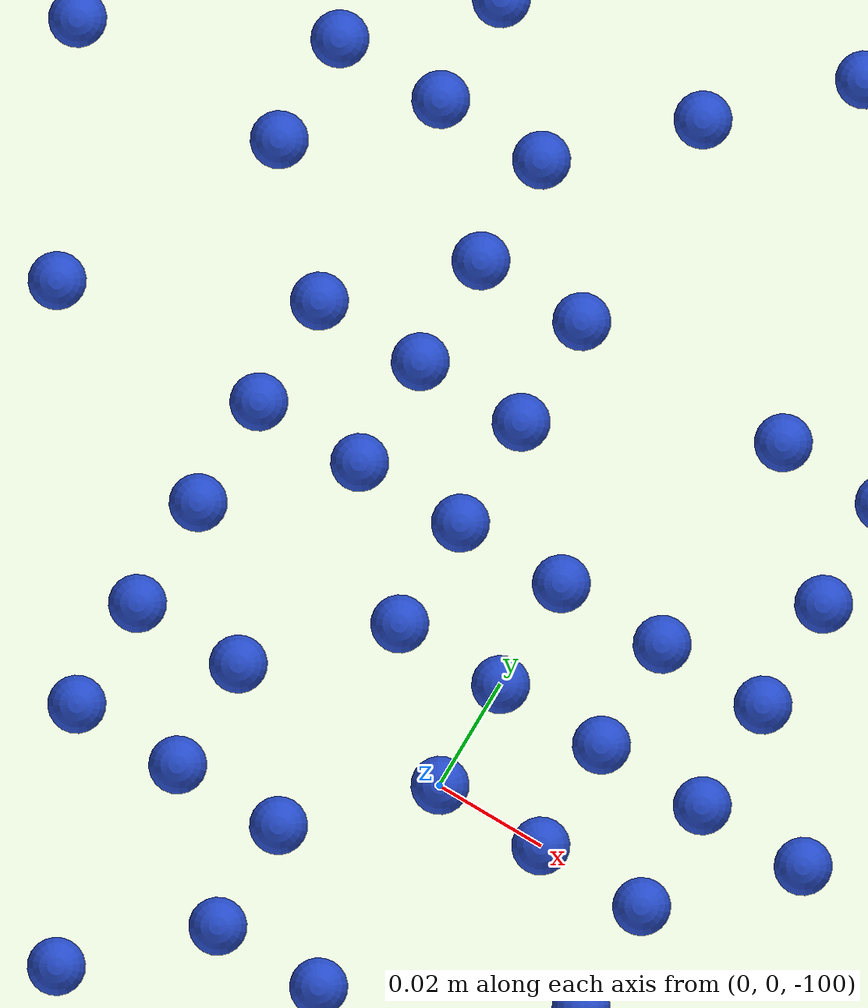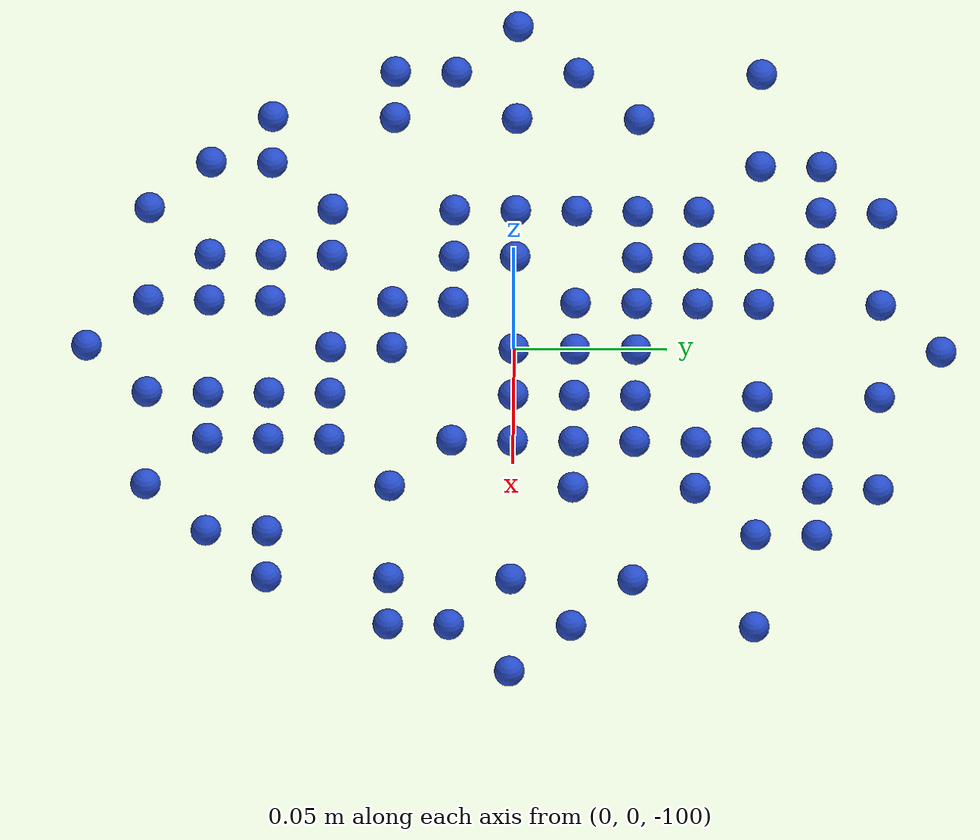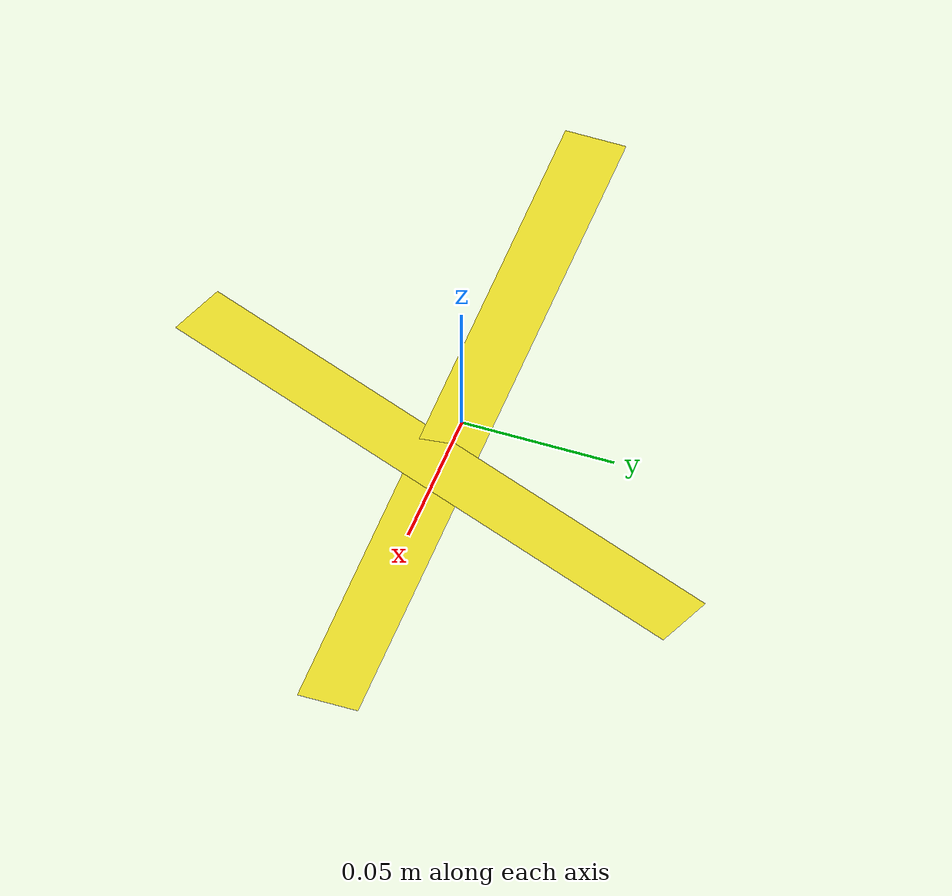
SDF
<?xml version='1.0'?>
<sdf version='1.7'>
  <model name='Yellow_Mark'>
    <static>true</static>
    <pose>0 0 0 0 0 0</pose>

    <link name="yellow_mark">
        <visual name="yellow_mark1_visual">
            <pose> 0 0 0.001 0 0 0 </pose>
            <geometry>
                <box>
                    <size>0.25 0.02 0.0</size>
                </box>
            </geometry>
            <material>
                <script>
                    <name>Gazebo/YellowGlow</name>
                </script>
            </material>
        </visual>

        <visual name="yellow_mark2_visual">
            <pose> 0.02 0 0.001 0 0 1.2 </pose>
            <geometry>
                <box>
                    <size>0.2 0.02 0.0</size>
                </box>
            </geometry>
            <material>
                <script>
                    <name>Gazebo/YellowGlow</name>
                </script>
            </material>
        </visual>
    </link>

    <link name="yellow_mark_water">
        <pose>0 0 -100 0 0 0</pose>
        <visual name="yellow_mark_centre1_visual">
            <pose> 0 0 0 0 0 0 </pose>
            <geometry>
                <sphere>
                    <radius>0.005</radius>
                </sphere>
            </geometry>
            <material>
                <script>
                    <name>Gazebo/BlueGlow</name>
                </script>
            </material>
        </visual>

        <visual name="yellow_mark_centre2_visual">
            <pose> 0.02 0 0 0 0 0 </pose>
            <geometry>
                <sphere>
                    <radius>0.005</radius>
                </sphere>
            </geometry>
            <material>
                <script>
                    <name>Gazebo/BlueGlow</name>
                </script>
            </material>
        </visual>

        <visual name="yellow_mark_centre4_visual">
            <pose> 0.04 0 0 0 0 0 </pose>
            <geometry>
                <sphere>
                    <radius>0.005</radius>
                </sphere>
            </geometry>
            <material>
                <script>
                    <name>Gazebo/BlueGlow</name>
                </script>
            </material>
        </visual>

        <visual name="yellow_mark_centre5_visual">
            <pose> -0.04 0 0 0 0 0 </pose>
            <geometry>
                <sphere>
                    <radius>0.005</radius>
                </sphere>
            </geometry>
            <material>
                <script>
                    <name>Gazebo/BlueGlow</name>
                </script>
            </material>
        </visual>

        <visual name="yellow_mark_centre7_visual">
            <pose> -0.06 0 0 0 0 0 </pose>
            <geometry>
                <sphere>
                    <radius>0.005</radius>
                </sphere>
            </geometry>
            <material>
                <script>
                    <name>Gazebo/BlueGlow</name>
                </script>
            </material>
        </visual>

        <visual name="yellow_mark_centre8_visual">
            <pose> 0 0.02 0 0 0 0 </pose>
            <geometry>
                <sphere>
                    <radius>0.005</radius>
                </sphere>
            </geometry>
            <material>
                <script>
                    <name>Gazebo/BlueGlow</name>
                </script>
            </material>
        </visual>

        <visual name="yellow_mark_centre10_visual">
            <pose> 0 0.04 0 0 0 0 </pose>
            <geometry>
                <sphere>
                    <radius>0.005</radius>
                </sphere>
            </geometry>
            <material>
                <script>
                    <name>Gazebo/BlueGlow</name>
                </script>
            </material>
        </visual>

        <visual name="yellow_mark_centre11_visual">
            <pose> 0 -0.04 0 0 0 0 </pose>
            <geometry>
                <sphere>
                    <radius>0.005</radius>
                </sphere>
            </geometry>
            <material>
                <script>
                    <name>Gazebo/BlueGlow</name>
                </script>
            </material>
        </visual>

        <visual name="yellow_mark_centre13_visual">
            <pose> 0 -0.06 0 0 0 0 </pose>
            <geometry>
                <sphere>
                    <radius>0.005</radius>
                </sphere>
            </geometry>
            <material>
                <script>
                    <name>Gazebo/BlueGlow</name>
                </script>
            </material>
        </visual>

        <visual name="yellow_mark_centre14_visual">
            <pose> 0.02 0.02 0 0 0 0 </pose>
            <geometry>
                <sphere>
                    <radius>0.005</radius>
                </sphere>
            </geometry>
            <material>
                <script>
                    <name>Gazebo/BlueGlow</name>
                </script>
            </material>
        </visual>

        <visual name="yellow_mark_centre16_visual">
            <pose> -0.02 -0.02 0 0 0 0 </pose>
            <geometry>
                <sphere>
                    <radius>0.005</radius>
                </sphere>
            </geometry>
            <material>
                <script>
                    <name>Gazebo/BlueGlow</name>
                </script>
            </material>
        </visual>

        <visual name="yellow_mark_centre17_visual">
            <pose> -0.02 0.02 0 0 0 0 </pose>
            <geometry>
                <sphere>
                    <radius>0.005</radius>
                </sphere>
            </geometry>
            <material>
                <script>
                    <name>Gazebo/BlueGlow</name>
                </script>
            </material>
        </visual>

        <visual name="yellow_mark_centre19_visual">
            <pose> 0.04 0.04 0 0 0 0 </pose>
            <geometry>
                <sphere>
                    <radius>0.005</radius>
                </sphere>
            </geometry>
            <material>
                <script>
                    <name>Gazebo/BlueGlow</name>
                </script>
            </material>
        </visual>

        <visual name="yellow_mark_centre20_visual">
            <pose> -0.04 0.04 0 0 0 0 </pose>
            <geometry>
                <sphere>
                    <radius>0.005</radius>
                </sphere>
            </geometry>
            <material>
                <script>
                    <name>Gazebo/BlueGlow</name>
                </script>
            </material>
        </visual>

        <visual name="yellow_mark_centre22_visual">
            <pose> 0.04 0.06 0 0 0 0 </pose>
            <geometry>
                <sphere>
                    <radius>0.005</radius>
                </sphere>
            </geometry>
            <material>
                <script>
                    <name>Gazebo/BlueGlow</name>
                </script>
            </material>
        </visual>

        <visual name="yellow_mark_centre23_visual">
            <pose> 0.04 -0.06 0 0 0 0 </pose>
            <geometry>
                <sphere>
                    <radius>0.005</radius>
                </sphere>
            </geometry>
            <material>
                <script>
                    <name>Gazebo/BlueGlow</name>
                </script>
            </material>
        </visual>

        <visual name="yellow_mark_centre25_visual">
            <pose> -0.04 0.06 0 0 0 0 </pose>
            <geometry>
                <sphere>
                    <radius>0.005</radius>
                </sphere>
            </geometry>
            <material>
                <script>
                    <name>Gazebo/BlueGlow</name>
                </script>
            </material>
        </visual>

        <visual name="yellow_mark_centre26_visual">
            <pose> -0.04 -0.06 0 0 0 0 </pose>
            <geometry>
                <sphere>
                    <radius>0.005</radius>
                </sphere>
            </geometry>
            <material>
                <script>
                    <name>Gazebo/BlueGlow</name>
                </script>
            </material>
        </visual>

        <visual name="yellow_mark_centre28_visual">
            <pose> 0.06 0.06 0 0 0 0 </pose>
            <geometry>
                <sphere>
                    <radius>0.005</radius>
                </sphere>
            </geometry>
            <material>
                <script>
                    <name>Gazebo/BlueGlow</name>
                </script>
            </material>
        </visual>

        <visual name="yellow_mark_centre29_visual">
            <pose> -0.06 0.06 0 0 0 0 </pose>
            <geometry>
                <sphere>
                    <radius>0.005</radius>
                </sphere>
            </geometry>
            <material>
                <script>
                    <name>Gazebo/BlueGlow</name>
                </script>
            </material>
        </visual>

        <visual name="yellow_mark_centre31_visual">
            <pose> -0.06 -0.06 0 0 0 0 </pose>
            <geometry>
                <sphere>
                    <radius>0.005</radius>
                </sphere>
            </geometry>
            <material>
                <script>
                    <name>Gazebo/BlueGlow</name>
                </script>
            </material>
        </visual>

        <visual name="yellow_mark_centre32_visual">
            <pose> 0.02 0.04 0 0 0 0 </pose>
            <geometry>
                <sphere>
                    <radius>0.005</radius>
                </sphere>
            </geometry>
            <material>
                <script>
                    <name>Gazebo/BlueGlow</name>
                </script>
            </material>
        </visual>

        <visual name="yellow_mark_centre34_visual">
            <pose> -0.02 0.04 0 0 0 0 </pose>
            <geometry>
                <sphere>
                    <radius>0.005</radius>
                </sphere>
            </geometry>
            <material>
                <script>
                    <name>Gazebo/BlueGlow</name>
                </script>
            </material>
        </visual>

        <visual name="yellow_mark_centre35_visual">
            <pose> -0.02 -0.04 0 0 0 0 </pose>
            <geometry>
                <sphere>
                    <radius>0.005</radius>
                </sphere>
            </geometry>
            <material>
                <script>
                    <name>Gazebo/BlueGlow</name>
                </script>
            </material>
        </visual>

        <visual name="yellow_mark_centre37_visual">
            <pose> 0.02 -0.06 0 0 0 0 </pose>
            <geometry>
                <sphere>
                    <radius>0.005</radius>
                </sphere>
            </geometry>
            <material>
                <script>
                    <name>Gazebo/BlueGlow</name>
                </script>
            </material>
        </visual>

        <visual name="yellow_mark_centre38_visual">
            <pose> -0.02 0.06 0 0 0 0 </pose>
            <geometry>
                <sphere>
                    <radius>0.005</radius>
                </sphere>
            </geometry>
            <material>
                <script>
                    <name>Gazebo/BlueGlow</name>
                </script>
            </material>
        </visual>

        <visual name="yellow_mark_centre40_visual">
            <pose> 0.04 0.02 0 0 0 0 </pose>
            <geometry>
                <sphere>
                    <radius>0.005</radius>
                </sphere>
            </geometry>
            <material>
                <script>
                    <name>Gazebo/BlueGlow</name>
                </script>
            </material>
        </visual>

        <visual name="yellow_mark_centre41_visual">
            <pose> 0.04 -0.02 0 0 0 0 </pose>
            <geometry>
                <sphere>
                    <radius>0.005</radius>
                </sphere>
            </geometry>
            <material>
                <script>
                    <name>Gazebo/BlueGlow</name>
                </script>
            </material>
        </visual>

        <visual name="yellow_mark_centre43_visual">
            <pose> -0.04 -0.02 0 0 0 0 </pose>
            <geometry>
                <sphere>
                    <radius>0.005</radius>
                </sphere>
            </geometry>
            <material>
                <script>
                    <name>Gazebo/BlueGlow</name>
                </script>
            </material>
        </visual>

        <visual name="yellow_mark_centre44_visual">
            <pose> 0.06 0.02 0 0 0 0 </pose>
            <geometry>
                <sphere>
                    <radius>0.005</radius>
                </sphere>
            </geometry>
            <material>
                <script>
                    <name>Gazebo/BlueGlow</name>
                </script>
            </material>
        </visual>

        <visual name="yellow_mark_centre46_visual">
            <pose> -0.06 0.02 0 0 0 0 </pose>
            <geometry>
                <sphere>
                    <radius>0.005</radius>
                </sphere>
            </geometry>
            <material>
                <script>
                    <name>Gazebo/BlueGlow</name>
                </script>
            </material>
        </visual>

        <visual name="yellow_mark_centre47_visual">
            <pose> -0.06 -0.02 0 0 0 0 </pose>
            <geometry>
                <sphere>
                    <radius>0.005</radius>
                </sphere>
            </geometry>
            <material>
                <script>
                    <name>Gazebo/BlueGlow</name>
                </script>
            </material>
        </visual>

        <visual name="yellow_mark_centre49_visual">
            <pose> 0.06 -0.04 0 0 0 0 </pose>
            <geometry>
                <sphere>
                    <radius>0.005</radius>
                </sphere>
            </geometry>
            <material>
                <script>
                    <name>Gazebo/BlueGlow</name>
                </script>
            </material>
        </visual>

        <visual name="yellow_mark_centre50_visual">
            <pose> -0.06 0.04 0 0 0 0 </pose>
            <geometry>
                <sphere>
                    <radius>0.005</radius>
                </sphere>
            </geometry>
            <material>
                <script>
                    <name>Gazebo/BlueGlow</name>
                </script>
            </material>
        </visual>

        <visual name="yellow_mark_top1_visual">
            <pose> -0.06 0.12 0 0 0 0 </pose>
            <geometry>
                <sphere>
                    <radius>0.005</radius>
                </sphere>
            </geometry>
            <material>
                <script>
                    <name>Gazebo/BlueGlow</name>
                </script>
            </material>
        </visual>

        <visual name="yellow_mark_top2_visual">
            <pose> -0.06 0.10 0 0 0 0 </pose>
            <geometry>
                <sphere>
                    <radius>0.005</radius>
                </sphere>
            </geometry>
            <material>
                <script>
                    <name>Gazebo/BlueGlow</name>
                </script>
            </material>
        </visual>

        <visual name="yellow_mark_top4_visual">
            <pose> -0.04 0.10 0 0 0 0 </pose>
            <geometry>
                <sphere>
                    <radius>0.005</radius>
                </sphere>
            </geometry>
            <material>
                <script>
                    <name>Gazebo/BlueGlow</name>
                </script>
            </material>
        </visual>

        <visual name="yellow_mark_top7_visual">
            <pose> -0.04 0.08 0 0 0 0 </pose>
            <geometry>
                <sphere>
                    <radius>0.005</radius>
                </sphere>
            </geometry>
            <material>
                <script>
                    <name>Gazebo/BlueGlow</name>
                </script>
            </material>
        </visual>

        <visual name="yellow_mark_top8_visual">
            <pose> -0.02 0.12 0 0 0 0 </pose>
            <geometry>
                <sphere>
                    <radius>0.005</radius>
                </sphere>
            </geometry>
            <material>
                <script>
                    <name>Gazebo/BlueGlow</name>
                </script>
            </material>
        </visual>

        <visual name="yellow_mark_top10_visual">
            <pose> -0.02 0.12 0 0 0 0 </pose>
            <geometry>
                <sphere>
                    <radius>0.005</radius>
                </sphere>
            </geometry>
            <material>
                <script>
                    <name>Gazebo/BlueGlow</name>
                </script>
            </material>
        </visual>

        <visual name="yellow_mark_top12_visual">
            <pose> -0.02 0.08 0 0 0 0 </pose>
            <geometry>
                <sphere>
                    <radius>0.005</radius>
                </sphere>
            </geometry>
            <material>
                <script>
                    <name>Gazebo/BlueGlow</name>
                </script>
            </material>
        </visual>

        <visual name="yellow_mark_top14_visual">
            <pose> 0.06 0.12 0 0 0 0 </pose>
            <geometry>
                <sphere>
                    <radius>0.005</radius>
                </sphere>
            </geometry>
            <material>
                <script>
                    <name>Gazebo/BlueGlow</name>
                </script>
            </material>
        </visual>

        <visual name="yellow_mark_top15_visual">
            <pose> 0.06 0.10 0 0 0 0 </pose>
            <geometry>
                <sphere>
                    <radius>0.005</radius>
                </sphere>
            </geometry>
            <material>
                <script>
                    <name>Gazebo/BlueGlow</name>
                </script>
            </material>
        </visual>

        <visual name="yellow_mark_top17_visual">
            <pose> 0.04 0.10 0 0 0 0 </pose>
            <geometry>
                <sphere>
                    <radius>0.005</radius>
                </sphere>
            </geometry>
            <material>
                <script>
                    <name>Gazebo/BlueGlow</name>
                </script>
            </material>
        </visual>

        <visual name="yellow_mark_top20_visual">
            <pose> 0.04 0.08 0 0 0 0 </pose>
            <geometry>
                <sphere>
                    <radius>0.005</radius>
                </sphere>
            </geometry>
            <material>
                <script>
                    <name>Gazebo/BlueGlow</name>
                </script>
            </material>
        </visual>

        <visual name="yellow_mark_top21_visual">
            <pose> 0.02 0.12 0 0 0 0 </pose>
            <geometry>
                <sphere>
                    <radius>0.005</radius>
                </sphere>
            </geometry>
            <material>
                <script>
                    <name>Gazebo/BlueGlow</name>
                </script>
            </material>
        </visual>

        <visual name="yellow_mark_top23_visual">
            <pose> 0.02 0.12 0 0 0 0 </pose>
            <geometry>
                <sphere>
                    <radius>0.005</radius>
                </sphere>
            </geometry>
            <material>
                <script>
                    <name>Gazebo/BlueGlow</name>
                </script>
            </material>
        </visual>

        <visual name="yellow_mark_top25_visual">
            <pose> 0.02 0.08 0 0 0 0 </pose>
            <geometry>
                <sphere>
                    <radius>0.005</radius>
                </sphere>
            </geometry>
            <material>
                <script>
                    <name>Gazebo/BlueGlow</name>
                </script>
            </material>
        </visual>

        <visual name="yellow_mark_top88_visual">
            <pose> 0.0 0.14 0 0 0 0 </pose>
            <geometry>
                <sphere>
                    <radius>0.005</radius>
                </sphere>
            </geometry>
            <material>
                <script>
                    <name>Gazebo/BlueGlow</name>
                </script>
            </material>
        </visual>

        <visual name="yellow_mark_top89_visual">
            <pose> 0.0 -0.14 0 0 0 0 </pose>
            <geometry>
                <sphere>
                    <radius>0.005</radius>
                </sphere>
            </geometry>
            <material>
                <script>
                    <name>Gazebo/BlueGlow</name>
                </script>
            </material>
        </visual>

        <visual name="yellow_mark_top3_visual">
            <pose> -0.06 -0.12 0 0 0 0 </pose>
            <geometry>
                <sphere>
                    <radius>0.005</radius>
                </sphere>
            </geometry>
            <material>
                <script>
                    <name>Gazebo/BlueGlow</name>
                </script>
            </material>
        </visual>

        <visual name="yellow_mark_top5_visual">
            <pose> -0.04 -0.10 0 0 0 0 </pose>
            <geometry>
                <sphere>
                    <radius>0.005</radius>
                </sphere>
            </geometry>
            <material>
                <script>
                    <name>Gazebo/BlueGlow</name>
                </script>
            </material>
        </visual>

        <visual name="yellow_mark_top6_visual">
            <pose> -0.04 -0.08 0 0 0 0 </pose>
            <geometry>
                <sphere>
                    <radius>0.005</radius>
                </sphere>
            </geometry>
            <material>
                <script>
                    <name>Gazebo/BlueGlow</name>
                </script>
            </material>
        </visual>

        <visual name="yellow_mark_top9_visual">
            <pose> -0.02 -0.12 0 0 0 0 </pose>
            <geometry>
                <sphere>
                    <radius>0.005</radius>
                </sphere>
            </geometry>
            <material>
                <script>
                    <name>Gazebo/BlueGlow</name>
                </script>
            </material>
        </visual>

        <visual name="yellow_mark_top11_visual">
            <pose> -0.02 -0.10 0 0 0 0 </pose>
            <geometry>
                <sphere>
                    <radius>0.005</radius>
                </sphere>
            </geometry>
            <material>
                <script>
                    <name>Gazebo/BlueGlow</name>
                </script>
            </material>
        </visual>

        <visual name="yellow_mark_top13_visual">
            <pose> -0.02 -0.08 0 0 0 0 </pose>
            <geometry>
                <sphere>
                    <radius>0.005</radius>
                </sphere>
            </geometry>
            <material>
                <script>
                    <name>Gazebo/BlueGlow</name>
                </script>
            </material>
        </visual>

        <visual name="yellow_mark_top6_visual">
            <pose> -0.04 -0.08 0 0 0 0 </pose>
            <geometry>
                <sphere>
                    <radius>0.005</radius>
                </sphere>
            </geometry>
            <material>
                <script>
                    <name>Gazebo/BlueGlow</name>
                </script>
            </material>
        </visual>

        <visual name="yellow_mark_top16_visual">
            <pose> 0.06 -0.12 0 0 0 0 </pose>
            <geometry>
                <sphere>
                    <radius>0.005</radius>
                </sphere>
            </geometry>
            <material>
                <script>
                    <name>Gazebo/BlueGlow</name>
                </script>
            </material>
        </visual>

        <visual name="yellow_mark_top18_visual">
            <pose> 0.04 -0.10 0 0 0 0 </pose>
            <geometry>
                <sphere>
                    <radius>0.005</radius>
                </sphere>
            </geometry>
            <material>
                <script>
                    <name>Gazebo/BlueGlow</name>
                </script>
            </material>
        </visual>

        <visual name="yellow_mark_top19_visual">
            <pose> 0.04 -0.08 0 0 0 0 </pose>
            <geometry>
                <sphere>
                    <radius>0.005</radius>
                </sphere>
            </geometry>
            <material>
                <script>
                    <name>Gazebo/BlueGlow</name>
                </script>
            </material>
        </visual>

        <visual name="yellow_mark_top22_visual">
            <pose> 0.02 -0.12 0 0 0 0 </pose>
            <geometry>
                <sphere>
                    <radius>0.005</radius>
                </sphere>
            </geometry>
            <material>
                <script>
                    <name>Gazebo/BlueGlow</name>
                </script>
            </material>
        </visual>

        <visual name="yellow_mark_top24_visual">
            <pose> 0.02 -0.10 0 0 0 0 </pose>
            <geometry>
                <sphere>
                    <radius>0.005</radius>
                </sphere>
            </geometry>
            <material>
                <script>
                    <name>Gazebo/BlueGlow</name>
                </script>
            </material>
        </visual>

        <visual name="yellow_mark_top26_visual">
            <pose> 0.02 -0.08 0 0 0 0 </pose>
            <geometry>
                <sphere>
                    <radius>0.005</radius>
                </sphere>
            </geometry>
            <material>
                <script>
                    <name>Gazebo/BlueGlow</name>
                </script>
            </material>
        </visual>

        <visual name="yellow_mark_top3_visual">
            <pose> -0.14 0 0 0 0 0 </pose>
            <geometry>
                <sphere>
                    <radius>0.005</radius>
                </sphere>
            </geometry>
            <material>
                <script>
                    <name>Gazebo/BlueGlow</name>
                </script>
            </material>
        </visual>

        <visual name="yellow_mark_top365_visual">
            <pose> -0.12 0.08 0 0 0 0 </pose>
            <geometry>
                <sphere>
                    <radius>0.005</radius>
                </sphere>
            </geometry>
            <material>
                <script>
                    <name>Gazebo/BlueGlow</name>
                </script>
            </material>
        </visual>

        <visual name="yellow_mark_top93_visual">
            <pose> -0.10 0 0 0 0 0 </pose>
            <geometry>
                <sphere>
                    <radius>0.005</radius>
                </sphere>
            </geometry>
            <material>
                <script>
                    <name>Gazebo/BlueGlow</name>
                </script>
            </material>
        </visual>

        <visual name="yellow_mark_top5_visual">
            <pose> -0.12 0.02 0 0 0 0 </pose>
            <geometry>
                <sphere>
                    <radius>0.005</radius>
                </sphere>
            </geometry>
            <material>
                <script>
                    <name>Gazebo/BlueGlow</name>
                </script>
            </material>
        </visual>

        <visual name="yellow_mark_top6_visual">
            <pose> -0.10 0.04 0 0 0 0 </pose>
            <geometry>
                <sphere>
                    <radius>0.005</radius>
                </sphere>
            </geometry>
            <material>
                <script>
                    <name>Gazebo/BlueGlow</name>
                </script>
            </material>
        </visual>

        <visual name="yellow_mark_top20_visual">
            <pose> -0.08 0.10 0 0 0 0 </pose>
            <geometry>
                <sphere>
                    <radius>0.005</radius>
                </sphere>
            </geometry>
            <material>
                <script>
                    <name>Gazebo/BlueGlow</name>
                </script>
            </material>
        </visual>

        <visual name="yellow_mark_top50_visual">
            <pose> -0.08 0.08 0 0 0 0 </pose>
            <geometry>
                <sphere>
                    <radius>0.005</radius>
                </sphere>
            </geometry>
            <material>
                <script>
                    <name>Gazebo/BlueGlow</name>
                </script>
            </material>
        </visual>

         <visual name="yellow_mark_top3_visual">
            <pose> -0.12 -0.04 0 0 0 0 </pose>
            <geometry>
                <sphere>
                    <radius>0.005</radius>
                </sphere>
            </geometry>
            <material>
                <script>
                    <name>Gazebo/BlueGlow</name>
                </script>
            </material>
        </visual>

        <visual name="yellow_mark_top5_visual">
            <pose> -0.12 -0.02 0 0 0 0 </pose>
            <geometry>
                <sphere>
                    <radius>0.005</radius>
                </sphere>
            </geometry>
            <material>
                <script>
                    <name>Gazebo/BlueGlow</name>
                </script>
            </material>
        </visual>

        <visual name="yellow_mark_top6_visual">
            <pose> -0.10 -0.04 0 0 0 0 </pose>
            <geometry>
                <sphere>
                    <radius>0.005</radius>
                </sphere>
            </geometry>
            <material>
                <script>
                    <name>Gazebo/BlueGlow</name>
                </script>
            </material>
        </visual>

        <visual name="yellow_mark_top6_visual">
            <pose> -0.10 -0.08 0 0 0 0 </pose>
            <geometry>
                <sphere>
                    <radius>0.005</radius>
                </sphere>
            </geometry>
            <material>
                <script>
                    <name>Gazebo/BlueGlow</name>
                </script>
            </material>
        </visual>

        <visual name="yellow_mark_top20_visual">
            <pose> -0.08 -0.10 0 0 0 0 </pose>
            <geometry>
                <sphere>
                    <radius>0.005</radius>
                </sphere>
            </geometry>
            <material>
                <script>
                    <name>Gazebo/BlueGlow</name>
                </script>
            </material>
        </visual>

        <visual name="yellow_mark_top50_visual">
            <pose> -0.08 -0.08 0 0 0 0 </pose>
            <geometry>
                <sphere>
                    <radius>0.005</radius>
                </sphere>
            </geometry>
            <material>
                <script>
                    <name>Gazebo/BlueGlow</name>
                </script>
            </material>
        </visual>

        <visual name="yellow_mark_top3_visual">
            <pose> 0.14 0 0 0 0 0 </pose>
            <geometry>
                <sphere>
                    <radius>0.005</radius>
                </sphere>
            </geometry>
            <material>
                <script>
                    <name>Gazebo/BlueGlow</name>
                </script>
            </material>
        </visual>

        <visual name="yellow_mark_top365_visual">
            <pose> 0.12 0.08 0 0 0 0 </pose>
            <geometry>
                <sphere>
                    <radius>0.005</radius>
                </sphere>
            </geometry>
            <material>
                <script>
                    <name>Gazebo/BlueGlow</name>
                </script>
            </material>
        </visual>

        <visual name="yellow_mark_top93_visual">
            <pose> 0.10 0 0 0 0 0 </pose>
            <geometry>
                <sphere>
                    <radius>0.005</radius>
                </sphere>
            </geometry>
            <material>
                <script>
                    <name>Gazebo/BlueGlow</name>
                </script>
            </material>
        </visual>

        <visual name="yellow_mark_top5_visual">
            <pose> 0.12 0.02 0 0 0 0 </pose>
            <geometry>
                <sphere>
                    <radius>0.005</radius>
                </sphere>
            </geometry>
            <material>
                <script>
                    <name>Gazebo/BlueGlow</name>
                </script>
            </material>
        </visual>

        <visual name="yellow_mark_top6_visual">
            <pose> 0.10 0.04 0 0 0 0 </pose>
            <geometry>
                <sphere>
                    <radius>0.005</radius>
                </sphere>
            </geometry>
            <material>
                <script>
                    <name>Gazebo/BlueGlow</name>
                </script>
            </material>
        </visual>

        <visual name="yellow_mark_top20_visual">
            <pose> 0.08 0.10 0 0 0 0 </pose>
            <geometry>
                <sphere>
                    <radius>0.005</radius>
                </sphere>
            </geometry>
            <material>
                <script>
                    <name>Gazebo/BlueGlow</name>
                </script>
            </material>
        </visual>

        <visual name="yellow_mark_top50_visual">
            <pose> 0.08 0.08 0 0 0 0 </pose>
            <geometry>
                <sphere>
                    <radius>0.005</radius>
                </sphere>
            </geometry>
            <material>
                <script>
                    <name>Gazebo/BlueGlow</name>
                </script>
            </material>
        </visual>

        <visual name="yellow_mark_top3_visual">
            <pose> 0.12 -0.04 0 0 0 0 </pose>
            <geometry>
                <sphere>
                    <radius>0.005</radius>
                </sphere>
            </geometry>
            <material>
                <script>
                    <name>Gazebo/BlueGlow</name>
                </script>
            </material>
        </visual>

        <visual name="yellow_mark_top5_visual">
            <pose> 0.12 -0.02 0 0 0 0 </pose>
            <geometry>
                <sphere>
                    <radius>0.005</radius>
                </sphere>
            </geometry>
            <material>
                <script>
                    <name>Gazebo/BlueGlow</name>
                </script>
            </material>
        </visual>

        <visual name="yellow_mark_top6_visual">
            <pose> 0.10 -0.04 0 0 0 0 </pose>
            <geometry>
                <sphere>
                    <radius>0.005</radius>
                </sphere>
            </geometry>
            <material>
                <script>
                    <name>Gazebo/BlueGlow</name>
                </script>
            </material>
        </visual>

        <visual name="yellow_mark_top6_visual">
            <pose> 0.10 -0.08 0 0 0 0 </pose>
            <geometry>
                <sphere>
                    <radius>0.005</radius>
                </sphere>
            </geometry>
            <material>
                <script>
                    <name>Gazebo/BlueGlow</name>
                </script>
            </material>
        </visual>

        <visual name="yellow_mark_top20_visual">
            <pose> 0.08 -0.10 0 0 0 0 </pose>
            <geometry>
                <sphere>
                    <radius>0.005</radius>
                </sphere>
            </geometry>
            <material>
                <script>
                    <name>Gazebo/BlueGlow</name>
                </script>
            </material>
        </visual>

        <visual name="yellow_mark_top50_visual">
            <pose> 0.08 -0.08 0 0 0 0 </pose>
            <geometry>
                <sphere>
                    <radius>0.005</radius>
                </sphere>
            </geometry>
            <material>
                <script>
                    <name>Gazebo/BlueGlow</name>
                </script>
            </material>
        </visual>
    </link>

  </model>
</sdf>
